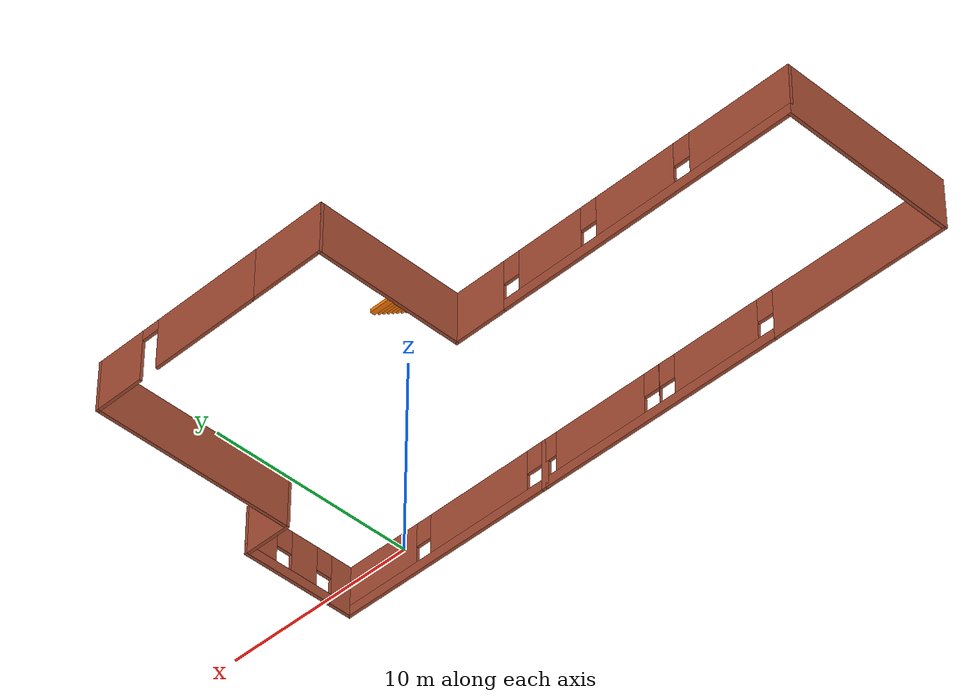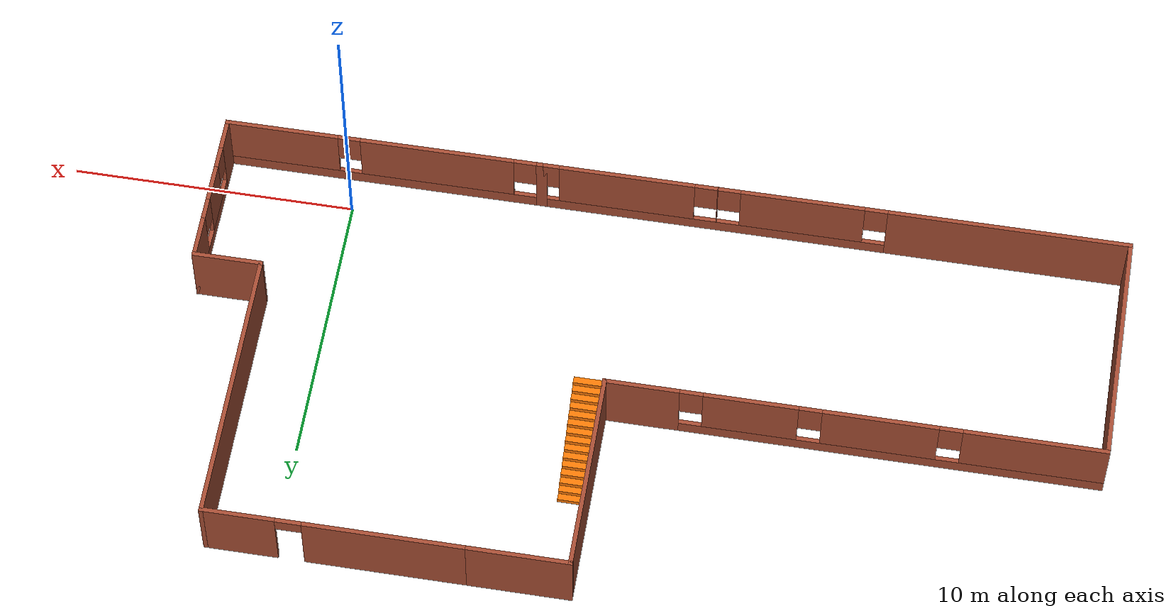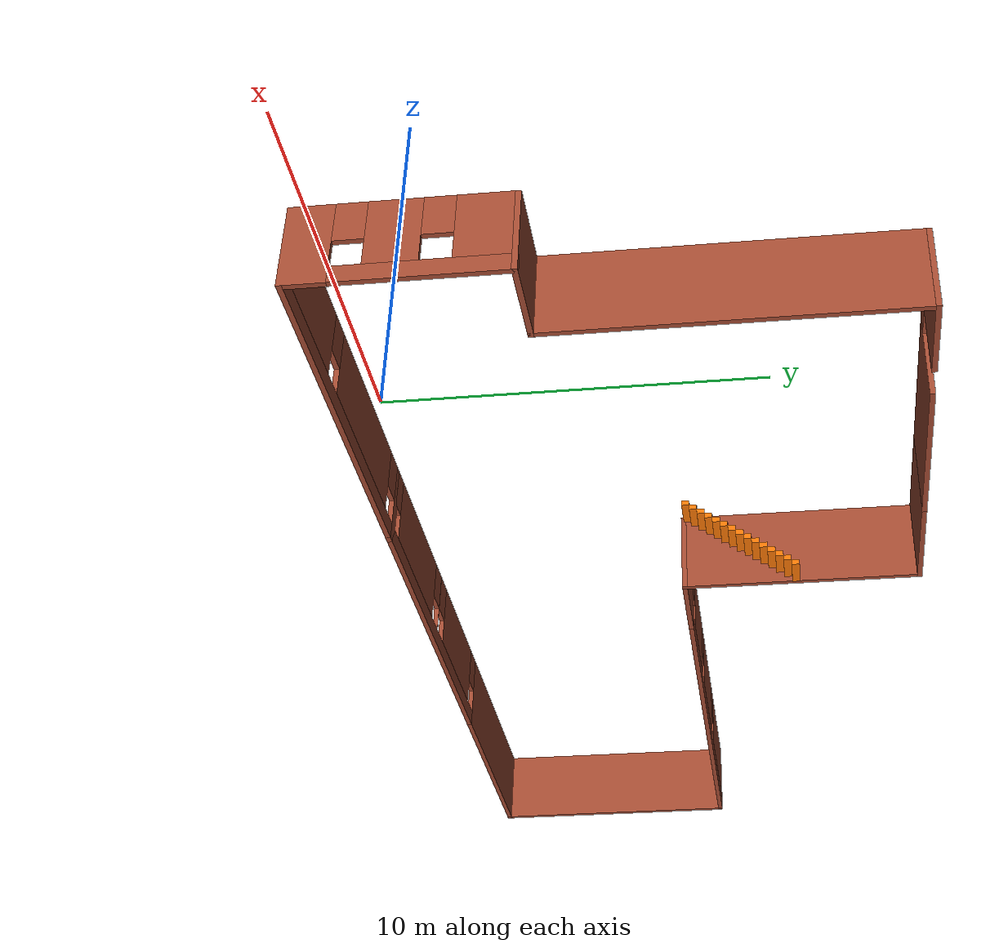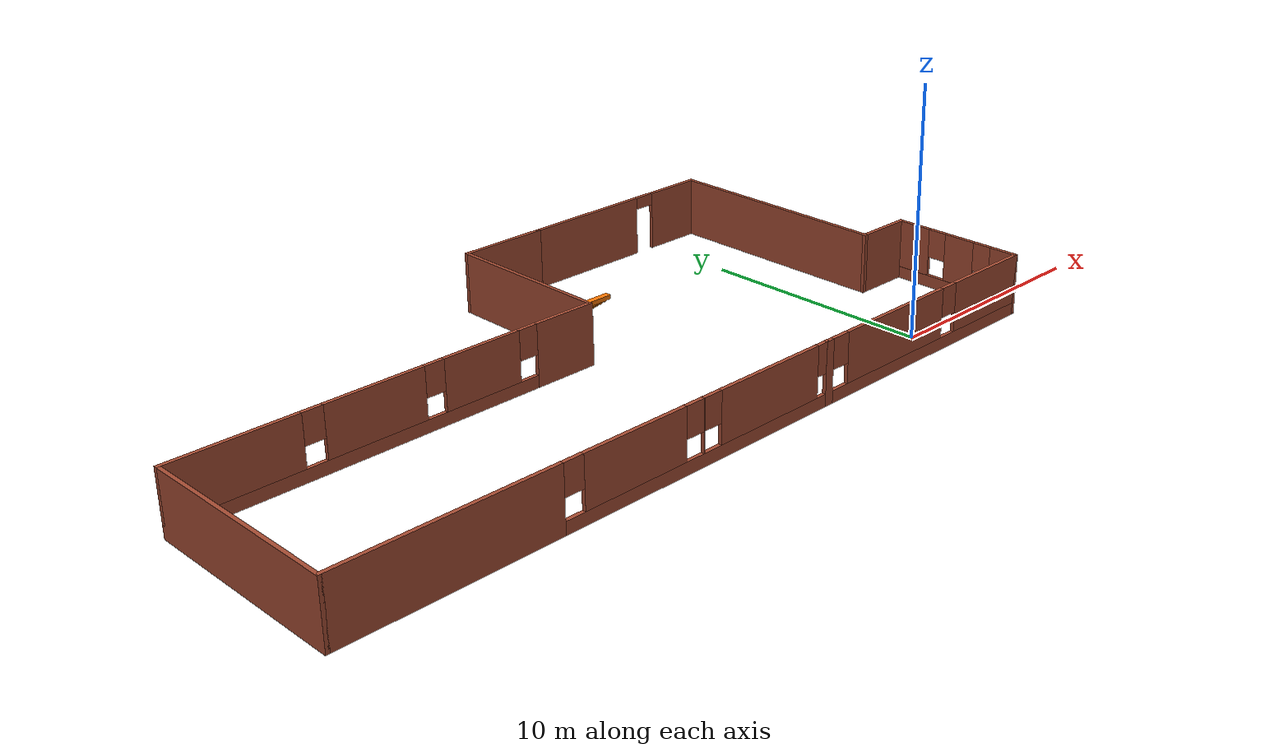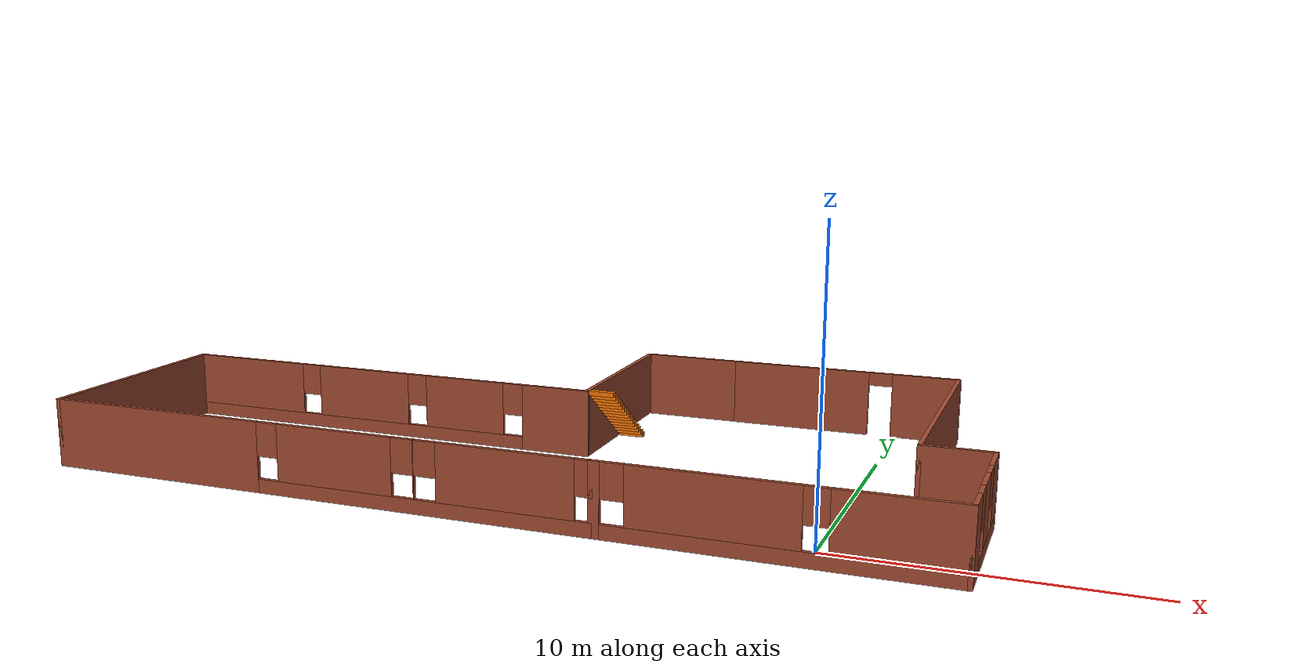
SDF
<?xml version='1.0'?>
<sdf version='1.7'>
  <model name='my_house'>
    <pose>-11.33 6.385 0 0 -0 0</pose>
    <link name='Stairs_1'>
      <visual name='Stairs_1_Visual_0'>
        <pose>1.69563 4.02009 0.083333 0 -0 0</pose>
        <geometry>
          <box>
            <size>1 0.233333 0.166667</size>
          </box>
        </geometry>
        <material>
          <script>
            <uri>file://media/materials/scripts/gazebo.material</uri>
            <name>Gazebo/Grey</name>
          </script>
          <ambient>0.996078 0.47451 0.0196078 1</ambient>
        </material>
        <meta>
          <layer>0</layer>
        </meta>
      </visual>
      <collision name='Stairs_1_Collision_0'>
        <geometry>
          <box>
            <size>1 0.233333 0.166667</size>
          </box>
        </geometry>
        <pose>1.69563 4.02009 0.083333 0 -0 0</pose>
      </collision>
      <visual name='Stairs_1_Visual_1'>
        <pose>1.69563 3.78676 0.25 0 -0 0</pose>
        <geometry>
          <box>
            <size>1 0.233333 0.166667</size>
          </box>
        </geometry>
        <material>
          <script>
            <uri>file://media/materials/scripts/gazebo.material</uri>
            <name>Gazebo/Grey</name>
          </script>
          <ambient>0.996078 0.47451 0.0196078 1</ambient>
        </material>
        <meta>
          <layer>0</layer>
        </meta>
      </visual>
      <collision name='Stairs_1_Collision_1'>
        <geometry>
          <box>
            <size>1 0.233333 0.166667</size>
          </box>
        </geometry>
        <pose>1.69563 3.78676 0.25 0 -0 0</pose>
      </collision>
      <visual name='Stairs_1_Visual_2'>
        <pose>1.69563 3.55343 0.416667 0 -0 0</pose>
        <geometry>
          <box>
            <size>1 0.233333 0.166667</size>
          </box>
        </geometry>
        <material>
          <script>
            <uri>file://media/materials/scripts/gazebo.material</uri>
            <name>Gazebo/Grey</name>
          </script>
          <ambient>0.996078 0.47451 0.0196078 1</ambient>
        </material>
        <meta>
          <layer>0</layer>
        </meta>
      </visual>
      <collision name='Stairs_1_Collision_2'>
        <geometry>
          <box>
            <size>1 0.233333 0.166667</size>
          </box>
        </geometry>
        <pose>1.69563 3.55343 0.416667 0 -0 0</pose>
      </collision>
      <visual name='Stairs_1_Visual_3'>
        <pose>1.69563 3.32009 0.583333 0 -0 0</pose>
        <geometry>
          <box>
            <size>1 0.233333 0.166667</size>
          </box>
        </geometry>
        <material>
          <script>
            <uri>file://media/materials/scripts/gazebo.material</uri>
            <name>Gazebo/Grey</name>
          </script>
          <ambient>0.996078 0.47451 0.0196078 1</ambient>
        </material>
        <meta>
          <layer>0</layer>
        </meta>
      </visual>
      <collision name='Stairs_1_Collision_3'>
        <geometry>
          <box>
            <size>1 0.233333 0.166667</size>
          </box>
        </geometry>
        <pose>1.69563 3.32009 0.583333 0 -0 0</pose>
      </collision>
      <visual name='Stairs_1_Visual_4'>
        <pose>1.69563 3.08676 0.75 0 -0 0</pose>
        <geometry>
          <box>
            <size>1 0.233333 0.166667</size>
          </box>
        </geometry>
        <material>
          <script>
            <uri>file://media/materials/scripts/gazebo.material</uri>
            <name>Gazebo/Grey</name>
          </script>
          <ambient>0.996078 0.47451 0.0196078 1</ambient>
        </material>
        <meta>
          <layer>0</layer>
        </meta>
      </visual>
      <collision name='Stairs_1_Collision_4'>
        <geometry>
          <box>
            <size>1 0.233333 0.166667</size>
          </box>
        </geometry>
        <pose>1.69563 3.08676 0.75 0 -0 0</pose>
      </collision>
      <visual name='Stairs_1_Visual_5'>
        <pose>1.69563 2.85343 0.916667 0 -0 0</pose>
        <geometry>
          <box>
            <size>1 0.233333 0.166667</size>
          </box>
        </geometry>
        <material>
          <script>
            <uri>file://media/materials/scripts/gazebo.material</uri>
            <name>Gazebo/Grey</name>
          </script>
          <ambient>0.996078 0.47451 0.0196078 1</ambient>
        </material>
        <meta>
          <layer>0</layer>
        </meta>
      </visual>
      <collision name='Stairs_1_Collision_5'>
        <geometry>
          <box>
            <size>1 0.233333 0.166667</size>
          </box>
        </geometry>
        <pose>1.69563 2.85343 0.916667 0 -0 0</pose>
      </collision>
      <visual name='Stairs_1_Visual_6'>
        <pose>1.69563 2.62009 1.08333 0 -0 0</pose>
        <geometry>
          <box>
            <size>1 0.233333 0.166667</size>
          </box>
        </geometry>
        <material>
          <script>
            <uri>file://media/materials/scripts/gazebo.material</uri>
            <name>Gazebo/Grey</name>
          </script>
          <ambient>0.996078 0.47451 0.0196078 1</ambient>
        </material>
        <meta>
          <layer>0</layer>
        </meta>
      </visual>
      <collision name='Stairs_1_Collision_6'>
        <geometry>
          <box>
            <size>1 0.233333 0.166667</size>
          </box>
        </geometry>
        <pose>1.69563 2.62009 1.08333 0 -0 0</pose>
      </collision>
      <visual name='Stairs_1_Visual_7'>
        <pose>1.69563 2.38676 1.25 0 -0 0</pose>
        <geometry>
          <box>
            <size>1 0.233333 0.166667</size>
          </box>
        </geometry>
        <material>
          <script>
            <uri>file://media/materials/scripts/gazebo.material</uri>
            <name>Gazebo/Grey</name>
          </script>
          <ambient>0.996078 0.47451 0.0196078 1</ambient>
        </material>
        <meta>
          <layer>0</layer>
        </meta>
      </visual>
      <collision name='Stairs_1_Collision_7'>
        <geometry>
          <box>
            <size>1 0.233333 0.166667</size>
          </box>
        </geometry>
        <pose>1.69563 2.38676 1.25 0 -0 0</pose>
      </collision>
      <visual name='Stairs_1_Visual_8'>
        <pose>1.69563 2.15343 1.41667 0 -0 0</pose>
        <geometry>
          <box>
            <size>1 0.233333 0.166667</size>
          </box>
        </geometry>
        <material>
          <script>
            <uri>file://media/materials/scripts/gazebo.material</uri>
            <name>Gazebo/Grey</name>
          </script>
          <ambient>0.996078 0.47451 0.0196078 1</ambient>
        </material>
        <meta>
          <layer>0</layer>
        </meta>
      </visual>
      <collision name='Stairs_1_Collision_8'>
        <geometry>
          <box>
            <size>1 0.233333 0.166667</size>
          </box>
        </geometry>
        <pose>1.69563 2.15343 1.41667 0 -0 0</pose>
      </collision>
      <visual name='Stairs_1_Visual_9'>
        <pose>1.69563 1.92009 1.58333 0 -0 0</pose>
        <geometry>
          <box>
            <size>1 0.233333 0.166667</size>
          </box>
        </geometry>
        <material>
          <script>
            <uri>file://media/materials/scripts/gazebo.material</uri>
            <name>Gazebo/Grey</name>
          </script>
          <ambient>0.996078 0.47451 0.0196078 1</ambient>
        </material>
        <meta>
          <layer>0</layer>
        </meta>
      </visual>
      <collision name='Stairs_1_Collision_9'>
        <geometry>
          <box>
            <size>1 0.233333 0.166667</size>
          </box>
        </geometry>
        <pose>1.69563 1.92009 1.58333 0 -0 0</pose>
      </collision>
      <visual name='Stairs_1_Visual_10'>
        <pose>1.69563 1.68676 1.75 0 -0 0</pose>
        <geometry>
          <box>
            <size>1 0.233333 0.166667</size>
          </box>
        </geometry>
        <material>
          <script>
            <uri>file://media/materials/scripts/gazebo.material</uri>
            <name>Gazebo/Grey</name>
          </script>
          <ambient>0.996078 0.47451 0.0196078 1</ambient>
        </material>
        <meta>
          <layer>0</layer>
        </meta>
      </visual>
      <collision name='Stairs_1_Collision_10'>
        <geometry>
          <box>
            <size>1 0.233333 0.166667</size>
          </box>
        </geometry>
        <pose>1.69563 1.68676 1.75 0 -0 0</pose>
      </collision>
      <visual name='Stairs_1_Visual_11'>
        <pose>1.69563 1.45343 1.91667 0 -0 0</pose>
        <geometry>
          <box>
            <size>1 0.233333 0.166667</size>
          </box>
        </geometry>
        <material>
          <script>
            <uri>file://media/materials/scripts/gazebo.material</uri>
            <name>Gazebo/Grey</name>
          </script>
          <ambient>0.996078 0.47451 0.0196078 1</ambient>
        </material>
        <meta>
          <layer>0</layer>
        </meta>
      </visual>
      <collision name='Stairs_1_Collision_11'>
        <geometry>
          <box>
            <size>1 0.233333 0.166667</size>
          </box>
        </geometry>
        <pose>1.69563 1.45343 1.91667 0 -0 0</pose>
      </collision>
      <visual name='Stairs_1_Visual_12'>
        <pose>1.69563 1.22009 2.08333 0 -0 0</pose>
        <geometry>
          <box>
            <size>1 0.233333 0.166667</size>
          </box>
        </geometry>
        <material>
          <script>
            <uri>file://media/materials/scripts/gazebo.material</uri>
            <name>Gazebo/Grey</name>
          </script>
          <ambient>0.996078 0.47451 0.0196078 1</ambient>
        </material>
        <meta>
          <layer>0</layer>
        </meta>
      </visual>
      <collision name='Stairs_1_Collision_12'>
        <geometry>
          <box>
            <size>1 0.233333 0.166667</size>
          </box>
        </geometry>
        <pose>1.69563 1.22009 2.08333 0 -0 0</pose>
      </collision>
      <visual name='Stairs_1_Visual_13'>
        <pose>1.69563 0.986759 2.25 0 -0 0</pose>
        <geometry>
          <box>
            <size>1 0.233333 0.166667</size>
          </box>
        </geometry>
        <material>
          <script>
            <uri>file://media/materials/scripts/gazebo.material</uri>
            <name>Gazebo/Grey</name>
          </script>
          <ambient>0.996078 0.47451 0.0196078 1</ambient>
        </material>
        <meta>
          <layer>0</layer>
        </meta>
      </visual>
      <collision name='Stairs_1_Collision_13'>
        <geometry>
          <box>
            <size>1 0.233333 0.166667</size>
          </box>
        </geometry>
        <pose>1.69563 0.986759 2.25 0 -0 0</pose>
      </collision>
      <visual name='Stairs_1_Visual_14'>
        <pose>1.69563 0.753426 2.41667 0 -0 0</pose>
        <geometry>
          <box>
            <size>1 0.233333 0.166667</size>
          </box>
        </geometry>
        <material>
          <script>
            <uri>file://media/materials/scripts/gazebo.material</uri>
            <name>Gazebo/Grey</name>
          </script>
          <ambient>0.996078 0.47451 0.0196078 1</ambient>
        </material>
        <meta>
          <layer>0</layer>
        </meta>
      </visual>
      <collision name='Stairs_1_Collision_14'>
        <geometry>
          <box>
            <size>1 0.233333 0.166667</size>
          </box>
        </geometry>
        <pose>1.69563 0.753426 2.41667 0 -0 0</pose>
      </collision>
    </link>
    <link name='Wall_1'>
      <pose>10.275 -7.725 0 0 -0 0</pose>
      <visual name='Wall_1_Visual_0'>
        <pose>-5.56024 0 1.25 0 -0 0</pose>
        <geometry>
          <box>
            <size>0.379517 0.15 2.5</size>
          </box>
        </geometry>
        <material>
          <script>
            <uri>file://media/materials/scripts/gazebo.material</uri>
            <name>Gazebo/Bricks</name>
          </script>
          <ambient>1 1 1 1</ambient>
        </material>
        <meta>
          <layer>0</layer>
        </meta>
      </visual>
      <collision name='Wall_1_Collision_0'>
        <geometry>
          <box>
            <size>0.379517 0.15 2.5</size>
          </box>
        </geometry>
        <pose>-5.56024 0 1.25 0 -0 0</pose>
      </collision>
      <visual name='Wall_1_Visual_1'>
        <pose>0.189759 0 0.25 0 -0 0</pose>
        <geometry>
          <box>
            <size>11.1205 0.15 0.5</size>
          </box>
        </geometry>
        <material>
          <script>
            <uri>file://media/materials/scripts/gazebo.material</uri>
            <name>Gazebo/Bricks</name>
          </script>
          <ambient>1 1 1 1</ambient>
        </material>
        <meta>
          <layer>0</layer>
        </meta>
      </visual>
      <collision name='Wall_1_Collision_1'>
        <geometry>
          <box>
            <size>11.1205 0.15 0.5</size>
          </box>
        </geometry>
        <pose>0.189759 0 0.25 0 -0 0</pose>
      </collision>
      <visual name='Wall_1_Visual_2'>
        <pose>-1.83102 0 1.5 0 -0 0</pose>
        <geometry>
          <box>
            <size>5.47893 0.15 2</size>
          </box>
        </geometry>
        <material>
          <script>
            <uri>file://media/materials/scripts/gazebo.material</uri>
            <name>Gazebo/Bricks</name>
          </script>
          <ambient>1 1 1 1</ambient>
        </material>
        <meta>
          <layer>0</layer>
        </meta>
      </visual>
      <collision name='Wall_1_Collision_2'>
        <geometry>
          <box>
            <size>5.47893 0.15 2</size>
          </box>
        </geometry>
        <pose>-1.83102 0 1.5 0 -0 0</pose>
      </collision>
      <visual name='Wall_1_Visual_3'>
        <pose>3.72923 0 1.5 0 -0 0</pose>
        <geometry>
          <box>
            <size>4.04155 0.15 2</size>
          </box>
        </geometry>
        <material>
          <script>
            <uri>file://media/materials/scripts/gazebo.material</uri>
            <name>Gazebo/Bricks</name>
          </script>
          <ambient>1 1 1 1</ambient>
        </material>
        <meta>
          <layer>0</layer>
        </meta>
      </visual>
      <collision name='Wall_1_Collision_3'>
        <geometry>
          <box>
            <size>4.04155 0.15 2</size>
          </box>
        </geometry>
        <pose>3.72923 0 1.5 0 -0 0</pose>
      </collision>
      <visual name='Wall_1_Visual_4'>
        <pose>-4.97048 0 1.9 0 -0 0</pose>
        <geometry>
          <box>
            <size>0.8 0.15 1.2</size>
          </box>
        </geometry>
        <material>
          <script>
            <uri>file://media/materials/scripts/gazebo.material</uri>
            <name>Gazebo/Bricks</name>
          </script>
          <ambient>1 1 1 1</ambient>
        </material>
        <meta>
          <layer>0</layer>
        </meta>
      </visual>
      <collision name='Wall_1_Collision_4'>
        <geometry>
          <box>
            <size>0.8 0.15 1.2</size>
          </box>
        </geometry>
        <pose>-4.97048 0 1.9 0 -0 0</pose>
      </collision>
      <visual name='Wall_1_Visual_5'>
        <pose>1.30845 0 1.9 0 -0 0</pose>
        <geometry>
          <box>
            <size>0.8 0.15 1.2</size>
          </box>
        </geometry>
        <material>
          <script>
            <uri>file://media/materials/scripts/gazebo.material</uri>
            <name>Gazebo/Bricks</name>
          </script>
          <ambient>1 1 1 1</ambient>
        </material>
        <meta>
          <layer>0</layer>
        </meta>
      </visual>
      <collision name='Wall_1_Collision_5'>
        <geometry>
          <box>
            <size>0.8 0.15 1.2</size>
          </box>
        </geometry>
        <pose>1.30845 0 1.9 0 -0 0</pose>
      </collision>
    </link>
    <link name='Wall_10'>
      <pose>-5.675 -7.725 0 0 -0 0</pose>
      <visual name='Wall_10_Visual_0'>
        <pose>-6.08547 0 1.25 0 -0 0</pose>
        <geometry>
          <box>
            <size>8.52906 0.15 2.5</size>
          </box>
        </geometry>
        <material>
          <script>
            <uri>file://media/materials/scripts/gazebo.material</uri>
            <name>Gazebo/Bricks</name>
          </script>
          <ambient>1 1 1 1</ambient>
        </material>
        <meta>
          <layer>0</layer>
        </meta>
      </visual>
      <collision name='Wall_10_Collision_0'>
        <geometry>
          <box>
            <size>8.52906 0.15 2.5</size>
          </box>
        </geometry>
        <pose>-6.08547 0 1.25 0 -0 0</pose>
      </collision>
      <visual name='Wall_10_Visual_1'>
        <pose>4.26453 0 0.25 0 -0 0</pose>
        <geometry>
          <box>
            <size>12.1709 0.15 0.5</size>
          </box>
        </geometry>
        <material>
          <script>
            <uri>file://media/materials/scripts/gazebo.material</uri>
            <name>Gazebo/Bricks</name>
          </script>
          <ambient>1 1 1 1</ambient>
        </material>
        <meta>
          <layer>0</layer>
        </meta>
      </visual>
      <collision name='Wall_10_Collision_1'>
        <geometry>
          <box>
            <size>12.1709 0.15 0.5</size>
          </box>
        </geometry>
        <pose>4.26453 0 0.25 0 -0 0</pose>
      </collision>
      <visual name='Wall_10_Visual_2'>
        <pose>1.15885 0 1.5 0 -0 0</pose>
        <geometry>
          <box>
            <size>4.35957 0.15 2</size>
          </box>
        </geometry>
        <material>
          <script>
            <uri>file://media/materials/scripts/gazebo.material</uri>
            <name>Gazebo/Bricks</name>
          </script>
          <ambient>1 1 1 1</ambient>
        </material>
        <meta>
          <layer>0</layer>
        </meta>
      </visual>
      <collision name='Wall_10_Collision_2'>
        <geometry>
          <box>
            <size>4.35957 0.15 2</size>
          </box>
        </geometry>
        <pose>1.15885 0 1.5 0 -0 0</pose>
      </collision>
      <visual name='Wall_10_Visual_3'>
        <pose>4.14965 0 1.5 0 -0 0</pose>
        <geometry>
          <box>
            <size>0.022033 0.15 2</size>
          </box>
        </geometry>
        <material>
          <script>
            <uri>file://media/materials/scripts/gazebo.material</uri>
            <name>Gazebo/Bricks</name>
          </script>
          <ambient>1 1 1 1</ambient>
        </material>
        <meta>
          <layer>0</layer>
        </meta>
      </visual>
      <collision name='Wall_10_Collision_3'>
        <geometry>
          <box>
            <size>0.022033 0.15 2</size>
          </box>
        </geometry>
        <pose>4.14965 0 1.5 0 -0 0</pose>
      </collision>
      <visual name='Wall_10_Visual_4'>
        <pose>7.35907 0 1.5 0 -0 0</pose>
        <geometry>
          <box>
            <size>4.79682 0.15 2</size>
          </box>
        </geometry>
        <material>
          <script>
            <uri>file://media/materials/scripts/gazebo.material</uri>
            <name>Gazebo/Bricks</name>
          </script>
          <ambient>1 1 1 1</ambient>
        </material>
        <meta>
          <layer>0</layer>
        </meta>
      </visual>
      <collision name='Wall_10_Collision_4'>
        <geometry>
          <box>
            <size>4.79682 0.15 2</size>
          </box>
        </geometry>
        <pose>7.35907 0 1.5 0 -0 0</pose>
      </collision>
      <visual name='Wall_10_Visual_5'>
        <pose>7.35907 0 1.5 0 -0 0</pose>
        <geometry>
          <box>
            <size>4.79682 0.15 2</size>
          </box>
        </geometry>
        <material>
          <script>
            <uri>file://media/materials/scripts/gazebo.material</uri>
            <name>Gazebo/Bricks</name>
          </script>
          <ambient>1 1 1 1</ambient>
        </material>
        <meta>
          <layer>0</layer>
        </meta>
      </visual>
      <collision name='Wall_10_Collision_5'>
        <geometry>
          <box>
            <size>4.79682 0.15 2</size>
          </box>
        </geometry>
        <pose>7.35907 0 1.5 0 -0 0</pose>
      </collision>
      <visual name='Wall_10_Visual_6'>
        <pose>-1.42094 0 1.9 0 -0 0</pose>
        <geometry>
          <box>
            <size>0.8 0.15 1.2</size>
          </box>
        </geometry>
        <material>
          <script>
            <uri>file://media/materials/scripts/gazebo.material</uri>
            <name>Gazebo/Bricks</name>
          </script>
          <ambient>1 1 1 1</ambient>
        </material>
        <meta>
          <layer>0</layer>
        </meta>
      </visual>
      <collision name='Wall_10_Collision_6'>
        <geometry>
          <box>
            <size>0.8 0.15 1.2</size>
          </box>
        </geometry>
        <pose>-1.42094 0 1.9 0 -0 0</pose>
      </collision>
      <visual name='Wall_10_Visual_7'>
        <pose>3.73863 0 1.9 0 -0 0</pose>
        <geometry>
          <box>
            <size>0.8 0.15 1.2</size>
          </box>
        </geometry>
        <material>
          <script>
            <uri>file://media/materials/scripts/gazebo.material</uri>
            <name>Gazebo/Bricks</name>
          </script>
          <ambient>1 1 1 1</ambient>
        </material>
        <meta>
          <layer>0</layer>
        </meta>
      </visual>
      <collision name='Wall_10_Collision_7'>
        <geometry>
          <box>
            <size>0.8 0.15 1.2</size>
          </box>
        </geometry>
        <pose>3.73863 0 1.9 0 -0 0</pose>
      </collision>
      <visual name='Wall_10_Visual_8'>
        <pose>4.56066 0 1.9 0 -0 0</pose>
        <geometry>
          <box>
            <size>0.8 0.15 1.2</size>
          </box>
        </geometry>
        <material>
          <script>
            <uri>file://media/materials/scripts/gazebo.material</uri>
            <name>Gazebo/Bricks</name>
          </script>
          <ambient>1 1 1 1</ambient>
        </material>
        <meta>
          <layer>0</layer>
        </meta>
      </visual>
      <collision name='Wall_10_Collision_8'>
        <geometry>
          <box>
            <size>0.8 0.15 1.2</size>
          </box>
        </geometry>
        <pose>4.56066 0 1.9 0 -0 0</pose>
      </collision>
      <visual name='Wall_10_Visual_9'>
        <pose>10.0537 0 1.9 0 -0 0</pose>
        <geometry>
          <box>
            <size>0.592516 0.15 1.2</size>
          </box>
        </geometry>
        <material>
          <script>
            <uri>file://media/materials/scripts/gazebo.material</uri>
            <name>Gazebo/Bricks</name>
          </script>
          <ambient>1 1 1 1</ambient>
        </material>
        <meta>
          <layer>0</layer>
        </meta>
      </visual>
      <collision name='Wall_10_Collision_9'>
        <geometry>
          <box>
            <size>0.592516 0.15 1.2</size>
          </box>
        </geometry>
        <pose>10.0537 0 1.9 0 -0 0</pose>
      </collision>
      <visual name='Wall_10_Visual_10'>
        <pose>10.0537 0 1.9 0 -0 0</pose>
        <geometry>
          <box>
            <size>0.592516 0.15 1.2</size>
          </box>
        </geometry>
        <material>
          <script>
            <uri>file://media/materials/scripts/gazebo.material</uri>
            <name>Gazebo/Bricks</name>
          </script>
          <ambient>1 1 1 1</ambient>
        </material>
        <meta>
          <layer>0</layer>
        </meta>
      </visual>
      <collision name='Wall_10_Collision_10'>
        <geometry>
          <box>
            <size>0.592516 0.15 1.2</size>
          </box>
        </geometry>
        <pose>10.0537 0 1.9 0 -0 0</pose>
      </collision>
    </link>
    <link name='Wall_2'>
      <pose>15.95 -4.925 0 0 -0 1.5708</pose>
      <visual name='Wall_2_Visual_0'>
        <pose>-2.27165 0 1.25 0 -0 0</pose>
        <geometry>
          <box>
            <size>1.2067 0.15 2.5</size>
          </box>
        </geometry>
        <material>
          <script>
            <uri>file://media/materials/scripts/gazebo.material</uri>
            <name>Gazebo/Bricks</name>
          </script>
          <ambient>1 1 1 1</ambient>
        </material>
        <meta>
          <layer>0</layer>
        </meta>
      </visual>
      <collision name='Wall_2_Collision_0'>
        <geometry>
          <box>
            <size>1.2067 0.15 2.5</size>
          </box>
        </geometry>
        <pose>-2.27165 0 1.25 0 -0 0</pose>
      </collision>
      <visual name='Wall_2_Visual_1'>
        <pose>0.603351 0 0.25 0 -0 0</pose>
        <geometry>
          <box>
            <size>4.5433 0.15 0.5</size>
          </box>
        </geometry>
        <material>
          <script>
            <uri>file://media/materials/scripts/gazebo.material</uri>
            <name>Gazebo/Bricks</name>
          </script>
          <ambient>1 1 1 1</ambient>
        </material>
        <meta>
          <layer>0</layer>
        </meta>
      </visual>
      <collision name='Wall_2_Collision_1'>
        <geometry>
          <box>
            <size>4.5433 0.15 0.5</size>
          </box>
        </geometry>
        <pose>0.603351 0 0.25 0 -0 0</pose>
      </collision>
      <visual name='Wall_2_Visual_2'>
        <pose>-0.182345 0 1.5 0 -0 0</pose>
        <geometry>
          <box>
            <size>1.37191 0.15 2</size>
          </box>
        </geometry>
        <material>
          <script>
            <uri>file://media/materials/scripts/gazebo.material</uri>
            <name>Gazebo/Bricks</name>
          </script>
          <ambient>1 1 1 1</ambient>
        </material>
        <meta>
          <layer>0</layer>
        </meta>
      </visual>
      <collision name='Wall_2_Collision_2'>
        <geometry>
          <box>
            <size>1.37191 0.15 2</size>
          </box>
        </geometry>
        <pose>-0.182345 0 1.5 0 -0 0</pose>
      </collision>
      <visual name='Wall_2_Visual_3'>
        <pose>2.0893 0 1.5 0 -0 0</pose>
        <geometry>
          <box>
            <size>1.57139 0.15 2</size>
          </box>
        </geometry>
        <material>
          <script>
            <uri>file://media/materials/scripts/gazebo.material</uri>
            <name>Gazebo/Bricks</name>
          </script>
          <ambient>1 1 1 1</ambient>
        </material>
        <meta>
          <layer>0</layer>
        </meta>
      </visual>
      <collision name='Wall_2_Collision_3'>
        <geometry>
          <box>
            <size>1.57139 0.15 2</size>
          </box>
        </geometry>
        <pose>2.0893 0 1.5 0 -0 0</pose>
      </collision>
      <visual name='Wall_2_Visual_4'>
        <pose>-1.2683 0 1.9 0 -0 0</pose>
        <geometry>
          <box>
            <size>0.8 0.15 1.2</size>
          </box>
        </geometry>
        <material>
          <script>
            <uri>file://media/materials/scripts/gazebo.material</uri>
            <name>Gazebo/Bricks</name>
          </script>
          <ambient>1 1 1 1</ambient>
        </material>
        <meta>
          <layer>0</layer>
        </meta>
      </visual>
      <collision name='Wall_2_Collision_4'>
        <geometry>
          <box>
            <size>0.8 0.15 1.2</size>
          </box>
        </geometry>
        <pose>-1.2683 0 1.9 0 -0 0</pose>
      </collision>
      <visual name='Wall_2_Visual_5'>
        <pose>0.903608 0 1.9 0 -0 0</pose>
        <geometry>
          <box>
            <size>0.8 0.15 1.2</size>
          </box>
        </geometry>
        <material>
          <script>
            <uri>file://media/materials/scripts/gazebo.material</uri>
            <name>Gazebo/Bricks</name>
          </script>
          <ambient>1 1 1 1</ambient>
        </material>
        <meta>
          <layer>0</layer>
        </meta>
      </visual>
      <collision name='Wall_2_Collision_5'>
        <geometry>
          <box>
            <size>0.8 0.15 1.2</size>
          </box>
        </geometry>
        <pose>0.903608 0 1.9 0 -0 0</pose>
      </collision>
    </link>
    <link name='Wall_3'>
      <collision name='Wall_3_Collision'>
        <geometry>
          <box>
            <size>2.5 0.15 2.5</size>
          </box>
        </geometry>
        <pose>0 0 1.25 0 -0 0</pose>
      </collision>
      <visual name='Wall_3_Visual'>
        <pose>0 0 1.25 0 -0 0</pose>
        <geometry>
          <box>
            <size>2.5 0.15 2.5</size>
          </box>
        </geometry>
        <material>
          <script>
            <uri>file://media/materials/scripts/gazebo.material</uri>
            <name>Gazebo/Bricks</name>
          </script>
          <ambient>1 1 1 1</ambient>
        </material>
        <meta>
          <layer>0</layer>
        </meta>
      </visual>
      <pose>14.775 -2.125 0 0 -0 3.14159</pose>
    </link>
    <link name='Wall_4'>
      <collision name='Wall_4_Collision'>
        <geometry>
          <box>
            <size>10 0.15 2.5</size>
          </box>
        </geometry>
        <pose>0 0 1.25 0 -0 0</pose>
      </collision>
      <visual name='Wall_4_Visual'>
        <pose>0 0 1.25 0 -0 0</pose>
        <geometry>
          <box>
            <size>10 0.15 2.5</size>
          </box>
        </geometry>
        <material>
          <script>
            <uri>file://media/materials/scripts/gazebo.material</uri>
            <name>Gazebo/Bricks</name>
          </script>
          <ambient>1 1 1 1</ambient>
        </material>
        <meta>
          <layer>0</layer>
        </meta>
      </visual>
      <pose>13.6 2.8 0 0 -0 1.5708</pose>
    </link>
    <link name='Wall_5'>
      <pose>9.175 7.725 0 0 -0 3.14159</pose>
      <visual name='Wall_5_Visual_0'>
        <pose>-3.21556 0 1.25 0 -0 0</pose>
        <geometry>
          <box>
            <size>2.56888 0.15 2.5</size>
          </box>
        </geometry>
        <material>
          <script>
            <uri>file://media/materials/scripts/gazebo.material</uri>
            <name>Gazebo/Bricks</name>
          </script>
          <ambient>1 1 1 1</ambient>
        </material>
        <meta>
          <layer>0</layer>
        </meta>
      </visual>
      <collision name='Wall_5_Collision_0'>
        <geometry>
          <box>
            <size>2.56888 0.15 2.5</size>
          </box>
        </geometry>
        <pose>-3.21556 0 1.25 0 -0 0</pose>
      </collision>
      <visual name='Wall_5_Visual_1'>
        <pose>1.73444 0 1.25 0 -0 0</pose>
        <geometry>
          <box>
            <size>5.53112 0.15 2.5</size>
          </box>
        </geometry>
        <material>
          <script>
            <uri>file://media/materials/scripts/gazebo.material</uri>
            <name>Gazebo/Bricks</name>
          </script>
          <ambient>1 1 1 1</ambient>
        </material>
        <meta>
          <layer>0</layer>
        </meta>
      </visual>
      <collision name='Wall_5_Collision_1'>
        <geometry>
          <box>
            <size>5.53112 0.15 2.5</size>
          </box>
        </geometry>
        <pose>1.73444 0 1.25 0 -0 0</pose>
      </collision>
      <visual name='Wall_5_Visual_2'>
        <pose>-1.48112 0 2.25 0 -0 0</pose>
        <geometry>
          <box>
            <size>0.9 0.15 0.5</size>
          </box>
        </geometry>
        <material>
          <script>
            <uri>file://media/materials/scripts/gazebo.material</uri>
            <name>Gazebo/Bricks</name>
          </script>
          <ambient>1 1 1 1</ambient>
        </material>
        <meta>
          <layer>0</layer>
        </meta>
      </visual>
      <collision name='Wall_5_Collision_2'>
        <geometry>
          <box>
            <size>0.9 0.15 0.5</size>
          </box>
        </geometry>
        <pose>-1.48112 0 2.25 0 -0 0</pose>
      </collision>
    </link>
    <link name='Wall_6'>
      <collision name='Wall_6_Collision'>
        <geometry>
          <box>
            <size>3.75 0.15 2.5</size>
          </box>
        </geometry>
        <pose>0 0 1.25 0 -0 0</pose>
      </collision>
      <visual name='Wall_6_Visual'>
        <pose>0 0 1.25 0 -0 0</pose>
        <geometry>
          <box>
            <size>3.75 0.15 2.5</size>
          </box>
        </geometry>
        <material>
          <script>
            <uri>file://media/materials/scripts/gazebo.material</uri>
            <name>Gazebo/Bricks</name>
          </script>
          <ambient>1 1 1 1</ambient>
        </material>
        <meta>
          <layer>0</layer>
        </meta>
      </visual>
      <pose>2.95 7.725 0 0 -0 3.14159</pose>
    </link>
    <link name='Wall_7'>
      <collision name='Wall_7_Collision'>
        <geometry>
          <box>
            <size>7.25 0.15 2.5</size>
          </box>
        </geometry>
        <pose>0 0 1.25 0 -0 0</pose>
      </collision>
      <visual name='Wall_7_Visual'>
        <pose>0 0 1.25 0 -0 0</pose>
        <geometry>
          <box>
            <size>7.25 0.15 2.5</size>
          </box>
        </geometry>
        <material>
          <script>
            <uri>file://media/materials/scripts/gazebo.material</uri>
            <name>Gazebo/Bricks</name>
          </script>
          <ambient>1 1 1 1</ambient>
        </material>
        <meta>
          <layer>0</layer>
        </meta>
      </visual>
      <pose>1.15 4.175 0 0 -0 -1.5708</pose>
    </link>
    <link name='Wall_8'>
      <pose>-7.4 0.625 0 0 -0 3.14159</pose>
      <visual name='Wall_8_Visual_0'>
        <pose>-7.29872 0 1.25 0 -0 0</pose>
        <geometry>
          <box>
            <size>2.65255 0.15 2.5</size>
          </box>
        </geometry>
        <material>
          <script>
            <uri>file://media/materials/scripts/gazebo.material</uri>
            <name>Gazebo/Bricks</name>
          </script>
          <ambient>1 1 1 1</ambient>
        </material>
        <meta>
          <layer>0</layer>
        </meta>
      </visual>
      <collision name='Wall_8_Collision_0'>
        <geometry>
          <box>
            <size>2.65255 0.15 2.5</size>
          </box>
        </geometry>
        <pose>-7.29872 0 1.25 0 -0 0</pose>
      </collision>
      <visual name='Wall_8_Visual_1'>
        <pose>1.32628 0 0.25 0 -0 0</pose>
        <geometry>
          <box>
            <size>14.5974 0.15 0.5</size>
          </box>
        </geometry>
        <material>
          <script>
            <uri>file://media/materials/scripts/gazebo.material</uri>
            <name>Gazebo/Bricks</name>
          </script>
          <ambient>1 1 1 1</ambient>
        </material>
        <meta>
          <layer>0</layer>
        </meta>
      </visual>
      <collision name='Wall_8_Collision_1'>
        <geometry>
          <box>
            <size>14.5974 0.15 0.5</size>
          </box>
        </geometry>
        <pose>1.32628 0 0.25 0 -0 0</pose>
      </collision>
      <visual name='Wall_8_Visual_2'>
        <pose>-3.5382 0 1.5 0 -0 0</pose>
        <geometry>
          <box>
            <size>3.2685 0.15 2</size>
          </box>
        </geometry>
        <material>
          <script>
            <uri>file://media/materials/scripts/gazebo.material</uri>
            <name>Gazebo/Bricks</name>
          </script>
          <ambient>1 1 1 1</ambient>
        </material>
        <meta>
          <layer>0</layer>
        </meta>
      </visual>
      <collision name='Wall_8_Collision_2'>
        <geometry>
          <box>
            <size>3.2685 0.15 2</size>
          </box>
        </geometry>
        <pose>-3.5382 0 1.5 0 -0 0</pose>
      </collision>
      <visual name='Wall_8_Visual_3'>
        <pose>0.88209 0 1.5 0 -0 0</pose>
        <geometry>
          <box>
            <size>3.97208 0.15 2</size>
          </box>
        </geometry>
        <material>
          <script>
            <uri>file://media/materials/scripts/gazebo.material</uri>
            <name>Gazebo/Bricks</name>
          </script>
          <ambient>1 1 1 1</ambient>
        </material>
        <meta>
          <layer>0</layer>
        </meta>
      </visual>
      <collision name='Wall_8_Collision_3'>
        <geometry>
          <box>
            <size>3.97208 0.15 2</size>
          </box>
        </geometry>
        <pose>0.88209 0 1.5 0 -0 0</pose>
      </collision>
      <visual name='Wall_8_Visual_4'>
        <pose>6.14656 0 1.5 0 -0 0</pose>
        <geometry>
          <box>
            <size>4.95687 0.15 2</size>
          </box>
        </geometry>
        <material>
          <script>
            <uri>file://media/materials/scripts/gazebo.material</uri>
            <name>Gazebo/Bricks</name>
          </script>
          <ambient>1 1 1 1</ambient>
        </material>
        <meta>
          <layer>0</layer>
        </meta>
      </visual>
      <collision name='Wall_8_Collision_4'>
        <geometry>
          <box>
            <size>4.95687 0.15 2</size>
          </box>
        </geometry>
        <pose>6.14656 0 1.5 0 -0 0</pose>
      </collision>
      <visual name='Wall_8_Visual_5'>
        <pose>-5.57245 0 1.9 0 -0 0</pose>
        <geometry>
          <box>
            <size>0.8 0.15 1.2</size>
          </box>
        </geometry>
        <material>
          <script>
            <uri>file://media/materials/scripts/gazebo.material</uri>
            <name>Gazebo/Bricks</name>
          </script>
          <ambient>1 1 1 1</ambient>
        </material>
        <meta>
          <layer>0</layer>
        </meta>
      </visual>
      <collision name='Wall_8_Collision_5'>
        <geometry>
          <box>
            <size>0.8 0.15 1.2</size>
          </box>
        </geometry>
        <pose>-5.57245 0 1.9 0 -0 0</pose>
      </collision>
      <visual name='Wall_8_Visual_6'>
        <pose>-1.50395 0 1.9 0 -0 0</pose>
        <geometry>
          <box>
            <size>0.8 0.15 1.2</size>
          </box>
        </geometry>
        <material>
          <script>
            <uri>file://media/materials/scripts/gazebo.material</uri>
            <name>Gazebo/Bricks</name>
          </script>
          <ambient>1 1 1 1</ambient>
        </material>
        <meta>
          <layer>0</layer>
        </meta>
      </visual>
      <collision name='Wall_8_Collision_6'>
        <geometry>
          <box>
            <size>0.8 0.15 1.2</size>
          </box>
        </geometry>
        <pose>-1.50395 0 1.9 0 -0 0</pose>
      </collision>
      <visual name='Wall_8_Visual_7'>
        <pose>3.26813 0 1.9 0 -0 0</pose>
        <geometry>
          <box>
            <size>0.8 0.15 1.2</size>
          </box>
        </geometry>
        <material>
          <script>
            <uri>file://media/materials/scripts/gazebo.material</uri>
            <name>Gazebo/Bricks</name>
          </script>
          <ambient>1 1 1 1</ambient>
        </material>
        <meta>
          <layer>0</layer>
        </meta>
      </visual>
      <collision name='Wall_8_Collision_7'>
        <geometry>
          <box>
            <size>0.8 0.15 1.2</size>
          </box>
        </geometry>
        <pose>3.26813 0 1.9 0 -0 0</pose>
      </collision>
    </link>
    <link name='Wall_9'>
      <collision name='Wall_9_Collision'>
        <geometry>
          <box>
            <size>8.5 0.15 2.5</size>
          </box>
        </geometry>
        <pose>0 0 1.25 0 -0 0</pose>
      </collision>
      <visual name='Wall_9_Visual'>
        <pose>0 0 1.25 0 -0 0</pose>
        <geometry>
          <box>
            <size>8.5 0.15 2.5</size>
          </box>
        </geometry>
        <material>
          <script>
            <uri>file://media/materials/scripts/gazebo.material</uri>
            <name>Gazebo/Bricks</name>
          </script>
          <ambient>1 1 1 1</ambient>
        </material>
        <meta>
          <layer>0</layer>
        </meta>
      </visual>
      <pose>-15.95 -3.55 0 0 -0 -1.5708</pose>
    </link>
    <static>1</static>
  </model>
</sdf>
